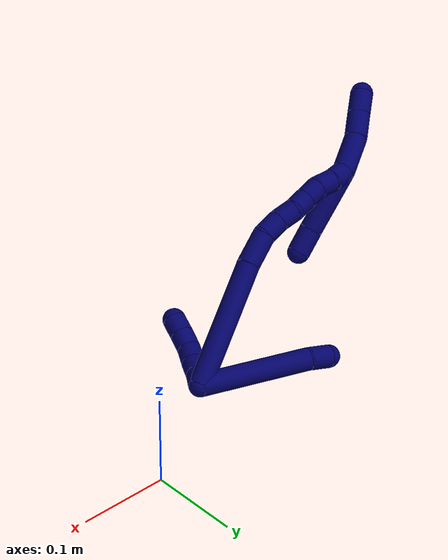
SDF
<sdf version="1.7">
 <world name="default">
  <model name="7">
   <static>0</static>
   <link name="7">
    <collision name="collision-cylinder-e_1_2_8">
     <pose>-0.052737 -0.005002 0.032989 0.150469 -1.00668 -0.082965</pose>
     <geometry><cylinder><radius>0.0125</radius><length>0.124812</length></cylinder></geometry>
     <surface>
      <friction><ode><mu>1.16</mu><mu2>1.16</mu2><slip1>0</slip1><slip2>0</slip2></ode></friction>
      <contact><ode><kp>1e+06</kp><kd>1</kd><max_vel>0</max_vel><min_depth>0.001</min_depth></ode></contact>
     </surface>
    </collision>
    <visual name="visual-cylinder-e_1_2_8">
     <pose>-0.052737 -0.005002 0.032989 0.150469 -1.00668 -0.082965</pose>
     <geometry><cylinder><radius>0.0125</radius><length>0.124812</length></cylinder></geometry>
     <material><ambient>0.003922 0 0.403922 1</ambient></material>
    </visual>
    <collision name="collision-cylinder-e_2_8_6">
     <pose>-0.116341 -0.013103 0.071538 0.508575 -1.04092 -0.295774</pose>
     <geometry><cylinder><radius>0.0125</radius><length>0.025188</length></cylinder></geometry>
     <surface>
      <friction><ode><mu>1.16</mu><mu2>1.16</mu2><slip1>0</slip1><slip2>0</slip2></ode></friction>
      <contact><ode><kp>1e+06</kp><kd>1</kd><max_vel>0</max_vel><min_depth>0.001</min_depth></ode></contact>
     </surface>
    </collision>
    <visual name="visual-cylinder-e_2_8_6">
     <pose>-0.116341 -0.013103 0.071538 0.508575 -1.04092 -0.295774</pose>
     <geometry><cylinder><radius>0.0125</radius><length>0.025188</length></cylinder></geometry>
     <material><ambient>0.003922 0 0.403922 1</ambient></material>
    </visual>
    <collision name="collision-cylinder-e_1_2_9">
     <pose>0.001574 -0.007449 0.006483 0.854608 0.158075 0.0721</pose>
     <geometry><cylinder><radius>0.0125</radius><length>0.02</length></cylinder></geometry>
     <surface>
      <friction><ode><mu>1.16</mu><mu2>1.16</mu2><slip1>0</slip1><slip2>0</slip2></ode></friction>
      <contact><ode><kp>1e+06</kp><kd>1</kd><max_vel>0</max_vel><min_depth>0.001</min_depth></ode></contact>
     </surface>
    </collision>
    <visual name="visual-cylinder-e_1_2_9">
     <pose>0.001574 -0.007449 0.006483 0.854608 0.158075 0.0721</pose>
     <geometry><cylinder><radius>0.0125</radius><length>0.02</length></cylinder></geometry>
     <material><ambient>0.003922 0 0.403922 1</ambient></material>
    </visual>
    <collision name="collision-cylinder-e_2_9_10">
     <pose>0.005944 -0.022044 0.019379 0.839438 0.283304 0.127101</pose>
     <geometry><cylinder><radius>0.0125</radius><length>0.02</length></cylinder></geometry>
     <surface>
      <friction><ode><mu>1.16</mu><mu2>1.16</mu2><slip1>0</slip1><slip2>0</slip2></ode></friction>
      <contact><ode><kp>1e+06</kp><kd>1</kd><max_vel>0</max_vel><min_depth>0.001</min_depth></ode></contact>
     </surface>
    </collision>
    <visual name="visual-cylinder-e_2_9_10">
     <pose>0.005944 -0.022044 0.019379 0.839438 0.283304 0.127101</pose>
     <geometry><cylinder><radius>0.0125</radius><length>0.02</length></cylinder></geometry>
     <material><ambient>0.003922 0 0.403922 1</ambient></material>
    </visual>
    <collision name="collision-cylinder-e_3_10_11">
     <pose>0.011848 -0.035281 0.033088 0.695642 0.31619 0.115475</pose>
     <geometry><cylinder><radius>0.0125</radius><length>0.02</length></cylinder></geometry>
     <surface>
      <friction><ode><mu>1.16</mu><mu2>1.16</mu2><slip1>0</slip1><slip2>0</slip2></ode></friction>
      <contact><ode><kp>1e+06</kp><kd>1</kd><max_vel>0</max_vel><min_depth>0.001</min_depth></ode></contact>
     </surface>
    </collision>
    <visual name="visual-cylinder-e_3_10_11">
     <pose>0.011848 -0.035281 0.033088 0.695642 0.31619 0.115475</pose>
     <geometry><cylinder><radius>0.0125</radius><length>0.02</length></cylinder></geometry>
     <material><ambient>0.003922 0 0.403922 1</ambient></material>
    </visual>
    <collision name="collision-cylinder-e_4_11_12">
     <pose>0.020151 -0.046005 0.047564 0.573 0.546103 0.164633</pose>
     <geometry><cylinder><radius>0.0125</radius><length>0.02</length></cylinder></geometry>
     <surface>
      <friction><ode><mu>1.16</mu><mu2>1.16</mu2><slip1>0</slip1><slip2>0</slip2></ode></friction>
      <contact><ode><kp>1e+06</kp><kd>1</kd><max_vel>0</max_vel><min_depth>0.001</min_depth></ode></contact>
     </surface>
    </collision>
    <visual name="visual-cylinder-e_4_11_12">
     <pose>0.020151 -0.046005 0.047564 0.573 0.546103 0.164633</pose>
     <geometry><cylinder><radius>0.0125</radius><length>0.02</length></cylinder></geometry>
     <material><ambient>0.003922 0 0.403922 1</ambient></material>
    </visual>
    <collision name="collision-cylinder-e_5_12_5">
     <pose>0.030958 -0.055025 0.061763 0.558675 0.595883 0.175712</pose>
     <geometry><cylinder><radius>0.0125</radius><length>0.02</length></cylinder></geometry>
     <surface>
      <friction><ode><mu>1.16</mu><mu2>1.16</mu2><slip1>0</slip1><slip2>0</slip2></ode></friction>
      <contact><ode><kp>1e+06</kp><kd>1</kd><max_vel>0</max_vel><min_depth>0.001</min_depth></ode></contact>
     </surface>
    </collision>
    <visual name="visual-cylinder-e_5_12_5">
     <pose>0.030958 -0.055025 0.061763 0.558675 0.595883 0.175712</pose>
     <geometry><cylinder><radius>0.0125</radius><length>0.02</length></cylinder></geometry>
     <material><ambient>0.003922 0 0.403922 1</ambient></material>
    </visual>
    <collision name="collision-cylinder-e_1_2_13">
     <pose>-0.005343 0.003225 0.068764 -0.046869 -0.077464 0.001817</pose>
     <geometry><cylinder><radius>0.0125</radius><length>0.138092</length></cylinder></geometry>
     <surface>
      <friction><ode><mu>1.16</mu><mu2>1.16</mu2><slip1>0</slip1><slip2>0</slip2></ode></friction>
      <contact><ode><kp>1e+06</kp><kd>1</kd><max_vel>0</max_vel><min_depth>0.001</min_depth></ode></contact>
     </surface>
    </collision>
    <visual name="visual-cylinder-e_1_2_13">
     <pose>-0.005343 0.003225 0.068764 -0.046869 -0.077464 0.001817</pose>
     <geometry><cylinder><radius>0.0125</radius><length>0.138092</length></cylinder></geometry>
     <material><ambient>0.003922 0 0.403922 1</ambient></material>
    </visual>
    <collision name="collision-cylinder-e_2_13_14">
     <pose>-0.01408 0.007046 0.155362 -0.033391 -0.187936 0.003147</pose>
     <geometry><cylinder><radius>0.0125</radius><length>0.03633</length></cylinder></geometry>
     <surface>
      <friction><ode><mu>1.16</mu><mu2>1.16</mu2><slip1>0</slip1><slip2>0</slip2></ode></friction>
      <contact><ode><kp>1e+06</kp><kd>1</kd><max_vel>0</max_vel><min_depth>0.001</min_depth></ode></contact>
     </surface>
    </collision>
    <visual name="visual-cylinder-e_2_13_14">
     <pose>-0.01408 0.007046 0.155362 -0.033391 -0.187936 0.003147</pose>
     <geometry><cylinder><radius>0.0125</radius><length>0.03633</length></cylinder></geometry>
     <material><ambient>0.003922 0 0.403922 1</ambient></material>
    </visual>
    <collision name="collision-cylinder-e_3_14_15">
     <pose>-0.023019 0.006529 0.18354 0.107161 -0.489718 -0.026801</pose>
     <geometry><cylinder><radius>0.0125</radius><length>0.023577</length></cylinder></geometry>
     <surface>
      <friction><ode><mu>1.16</mu><mu2>1.16</mu2><slip1>0</slip1><slip2>0</slip2></ode></friction>
      <contact><ode><kp>1e+06</kp><kd>1</kd><max_vel>0</max_vel><min_depth>0.001</min_depth></ode></contact>
     </surface>
    </collision>
    <visual name="visual-cylinder-e_3_14_15">
     <pose>-0.023019 0.006529 0.18354 0.107161 -0.489718 -0.026801</pose>
     <geometry><cylinder><radius>0.0125</radius><length>0.023577</length></cylinder></geometry>
     <material><ambient>0.003922 0 0.403922 1</ambient></material>
    </visual>
    <collision name="collision-cylinder-e_4_15_16">
     <pose>-0.034999 0.005332 0.202388 0.010012 -0.647713 -0.003361</pose>
     <geometry><cylinder><radius>0.0125</radius><length>0.021331</length></cylinder></geometry>
     <surface>
      <friction><ode><mu>1.16</mu><mu2>1.16</mu2><slip1>0</slip1><slip2>0</slip2></ode></friction>
      <contact><ode><kp>1e+06</kp><kd>1</kd><max_vel>0</max_vel><min_depth>0.001</min_depth></ode></contact>
     </surface>
    </collision>
    <visual name="visual-cylinder-e_4_15_16">
     <pose>-0.034999 0.005332 0.202388 0.010012 -0.647713 -0.003361</pose>
     <geometry><cylinder><radius>0.0125</radius><length>0.021331</length></cylinder></geometry>
     <material><ambient>0.003922 0 0.403922 1</ambient></material>
    </visual>
    <collision name="collision-cylinder-e_5_16_17">
     <pose>-0.046123 0.002111 0.219197 0.361019 -0.486018 -0.090423</pose>
     <geometry><cylinder><radius>0.0125</radius><length>0.020075</length></cylinder></geometry>
     <surface>
      <friction><ode><mu>1.16</mu><mu2>1.16</mu2><slip1>0</slip1><slip2>0</slip2></ode></friction>
      <contact><ode><kp>1e+06</kp><kd>1</kd><max_vel>0</max_vel><min_depth>0.001</min_depth></ode></contact>
     </surface>
    </collision>
    <visual name="visual-cylinder-e_5_16_17">
     <pose>-0.046123 0.002111 0.219197 0.361019 -0.486018 -0.090423</pose>
     <geometry><cylinder><radius>0.0125</radius><length>0.020075</length></cylinder></geometry>
     <material><ambient>0.003922 0 0.403922 1</ambient></material>
    </visual>
    <collision name="collision-cylinder-e_6_17_18">
     <pose>-0.055713 -0.002344 0.236329 0.148499 -0.502099 -0.03815</pose>
     <geometry><cylinder><radius>0.0125</radius><length>0.020369</length></cylinder></geometry>
     <surface>
      <friction><ode><mu>1.16</mu><mu2>1.16</mu2><slip1>0</slip1><slip2>0</slip2></ode></friction>
      <contact><ode><kp>1e+06</kp><kd>1</kd><max_vel>0</max_vel><min_depth>0.001</min_depth></ode></contact>
     </surface>
    </collision>
    <visual name="visual-cylinder-e_6_17_18">
     <pose>-0.055713 -0.002344 0.236329 0.148499 -0.502099 -0.03815</pose>
     <geometry><cylinder><radius>0.0125</radius><length>0.020369</length></cylinder></geometry>
     <material><ambient>0.003922 0 0.403922 1</ambient></material>
    </visual>
    <collision name="collision-cylinder-e_7_18_19">
     <pose>-0.067681 -0.005523 0.252054 0.263133 -0.780105 -0.108699</pose>
     <geometry><cylinder><radius>0.0125</radius><length>0.020091</length></cylinder></geometry>
     <surface>
      <friction><ode><mu>1.16</mu><mu2>1.16</mu2><slip1>0</slip1><slip2>0</slip2></ode></friction>
      <contact><ode><kp>1e+06</kp><kd>1</kd><max_vel>0</max_vel><min_depth>0.001</min_depth></ode></contact>
     </surface>
    </collision>
    <visual name="visual-cylinder-e_7_18_19">
     <pose>-0.067681 -0.005523 0.252054 0.263133 -0.780105 -0.108699</pose>
     <geometry><cylinder><radius>0.0125</radius><length>0.020091</length></cylinder></geometry>
     <material><ambient>0.003922 0 0.403922 1</ambient></material>
    </visual>
    <collision name="collision-cylinder-e_8_19_1">
     <pose>-0.080162 -0.010927 0.266658 0.4312 -0.567991 -0.127674</pose>
     <geometry><cylinder><radius>0.0125</radius><length>0.020134</length></cylinder></geometry>
     <surface>
      <friction><ode><mu>1.16</mu><mu2>1.16</mu2><slip1>0</slip1><slip2>0</slip2></ode></friction>
      <contact><ode><kp>1e+06</kp><kd>1</kd><max_vel>0</max_vel><min_depth>0.001</min_depth></ode></contact>
     </surface>
    </collision>
    <visual name="visual-cylinder-e_8_19_1">
     <pose>-0.080162 -0.010927 0.266658 0.4312 -0.567991 -0.127674</pose>
     <geometry><cylinder><radius>0.0125</radius><length>0.020134</length></cylinder></geometry>
     <material><ambient>0.003922 0 0.403922 1</ambient></material>
    </visual>
    <collision name="collision-cylinder-e_1_1_20">
     <pose>-0.080462 -0.028198 0.241751 2.7433 0.143568 0.684541</pose>
     <geometry><cylinder><radius>0.0125</radius><length>0.071508</length></cylinder></geometry>
     <surface>
      <friction><ode><mu>1.16</mu><mu2>1.16</mu2><slip1>0</slip1><slip2>0</slip2></ode></friction>
      <contact><ode><kp>1e+06</kp><kd>1</kd><max_vel>0</max_vel><min_depth>0.001</min_depth></ode></contact>
     </surface>
    </collision>
    <visual name="visual-cylinder-e_1_1_20">
     <pose>-0.080462 -0.028198 0.241751 2.7433 0.143568 0.684541</pose>
     <geometry><cylinder><radius>0.0125</radius><length>0.071508</length></cylinder></geometry>
     <material><ambient>0.003922 0 0.403922 1</ambient></material>
    </visual>
    <collision name="collision-cylinder-e_2_20_4">
     <pose>-0.073105 -0.045549 0.195542 2.88093 0.158002 1.08668</pose>
     <geometry><cylinder><radius>0.0125</radius><length>0.028492</length></cylinder></geometry>
     <surface>
      <friction><ode><mu>1.16</mu><mu2>1.16</mu2><slip1>0</slip1><slip2>0</slip2></ode></friction>
      <contact><ode><kp>1e+06</kp><kd>1</kd><max_vel>0</max_vel><min_depth>0.001</min_depth></ode></contact>
     </surface>
    </collision>
    <visual name="visual-cylinder-e_2_20_4">
     <pose>-0.073105 -0.045549 0.195542 2.88093 0.158002 1.08668</pose>
     <geometry><cylinder><radius>0.0125</radius><length>0.028492</length></cylinder></geometry>
     <material><ambient>0.003922 0 0.403922 1</ambient></material>
    </visual>
    <collision name="collision-cylinder-e_1_1_21">
     <pose>-0.087933 -0.01925 0.29602 0.217097 -0.105837 -0.011544</pose>
     <geometry><cylinder><radius>0.0125</radius><length>0.044594</length></cylinder></geometry>
     <surface>
      <friction><ode><mu>1.16</mu><mu2>1.16</mu2><slip1>0</slip1><slip2>0</slip2></ode></friction>
      <contact><ode><kp>1e+06</kp><kd>1</kd><max_vel>0</max_vel><min_depth>0.001</min_depth></ode></contact>
     </surface>
    </collision>
    <visual name="visual-cylinder-e_1_1_21">
     <pose>-0.087933 -0.01925 0.29602 0.217097 -0.105837 -0.011544</pose>
     <geometry><cylinder><radius>0.0125</radius><length>0.044594</length></cylinder></geometry>
     <material><ambient>0.003922 0 0.403922 1</ambient></material>
    </visual>
    <collision name="collision-cylinder-e_2_21_22">
     <pose>-0.088931 -0.027262 0.331906 0.22359 0.092729 0.010417</pose>
     <geometry><cylinder><radius>0.0125</radius><length>0.029321</length></cylinder></geometry>
     <surface>
      <friction><ode><mu>1.16</mu><mu2>1.16</mu2><slip1>0</slip1><slip2>0</slip2></ode></friction>
      <contact><ode><kp>1e+06</kp><kd>1</kd><max_vel>0</max_vel><min_depth>0.001</min_depth></ode></contact>
     </surface>
    </collision>
    <visual name="visual-cylinder-e_2_21_22">
     <pose>-0.088931 -0.027262 0.331906 0.22359 0.092729 0.010417</pose>
     <geometry><cylinder><radius>0.0125</radius><length>0.029321</length></cylinder></geometry>
     <material><ambient>0.003922 0 0.403922 1</ambient></material>
    </visual>
    <collision name="collision-cylinder-e_3_22_3">
     <pose>-0.086512 -0.033418 0.358807 0.226469 0.081459 0.009269</pose>
     <geometry><cylinder><radius>0.0125</radius><length>0.026085</length></cylinder></geometry>
     <surface>
      <friction><ode><mu>1.16</mu><mu2>1.16</mu2><slip1>0</slip1><slip2>0</slip2></ode></friction>
      <contact><ode><kp>1e+06</kp><kd>1</kd><max_vel>0</max_vel><min_depth>0.001</min_depth></ode></contact>
     </surface>
    </collision>
    <visual name="visual-cylinder-e_3_22_3">
     <pose>-0.086512 -0.033418 0.358807 0.226469 0.081459 0.009269</pose>
     <geometry><cylinder><radius>0.0125</radius><length>0.026085</length></cylinder></geometry>
     <material><ambient>0.003922 0 0.403922 1</ambient></material>
    </visual>
    <collision name="collision-sphere-3">
     <pose>-0.085451 -0.036337 0.371474 0 -0 0</pose>
     <geometry><sphere><radius>0.0125</radius></sphere></geometry>
     <surface>
      <friction><ode><mu>1.16</mu><mu2>1.16</mu2><slip1>0</slip1><slip2>0</slip2></ode></friction>
      <contact><ode><kp>1e+06</kp><kd>1</kd><max_vel>0</max_vel><min_depth>0.001</min_depth></ode></contact>
     </surface>
    </collision>
    <visual name="visual-sphere-3">
     <pose>-0.085451 -0.036337 0.371474 0 -0 0</pose>
     <geometry><sphere><radius>0.0125</radius></sphere></geometry>
     <material><ambient>0.003922 0 0.403922 1</ambient></material>
    </visual>
    <collision name="collision-sphere-22">
     <pose>-0.087573 -0.030499 0.34614 0 -0 0</pose>
     <geometry><sphere><radius>0.0125</radius></sphere></geometry>
     <surface>
      <friction><ode><mu>1.16</mu><mu2>1.16</mu2><slip1>0</slip1><slip2>0</slip2></ode></friction>
      <contact><ode><kp>1e+06</kp><kd>1</kd><max_vel>0</max_vel><min_depth>0.001</min_depth></ode></contact>
     </surface>
    </collision>
    <visual name="visual-sphere-22">
     <pose>-0.087573 -0.030499 0.34614 0 -0 0</pose>
     <geometry><sphere><radius>0.0125</radius></sphere></geometry>
     <material><ambient>0.003922 0 0.403922 1</ambient></material>
    </visual>
    <collision name="collision-sphere-21">
     <pose>-0.090288 -0.024026 0.317671 0 -0 0</pose>
     <geometry><sphere><radius>0.0125</radius></sphere></geometry>
     <surface>
      <friction><ode><mu>1.16</mu><mu2>1.16</mu2><slip1>0</slip1><slip2>0</slip2></ode></friction>
      <contact><ode><kp>1e+06</kp><kd>1</kd><max_vel>0</max_vel><min_depth>0.001</min_depth></ode></contact>
     </surface>
    </collision>
    <visual name="visual-sphere-21">
     <pose>-0.090288 -0.024026 0.317671 0 -0 0</pose>
     <geometry><sphere><radius>0.0125</radius></sphere></geometry>
     <material><ambient>0.003922 0 0.403922 1</ambient></material>
    </visual>
    <collision name="collision-sphere-4">
     <pose>-0.070863 -0.049174 0.181949 0 -0 0</pose>
     <geometry><sphere><radius>0.0125</radius></sphere></geometry>
     <surface>
      <friction><ode><mu>1.16</mu><mu2>1.16</mu2><slip1>0</slip1><slip2>0</slip2></ode></friction>
      <contact><ode><kp>1e+06</kp><kd>1</kd><max_vel>0</max_vel><min_depth>0.001</min_depth></ode></contact>
     </surface>
    </collision>
    <visual name="visual-sphere-4">
     <pose>-0.070863 -0.049174 0.181949 0 -0 0</pose>
     <geometry><sphere><radius>0.0125</radius></sphere></geometry>
     <material><ambient>0.003922 0 0.403922 1</ambient></material>
    </visual>
    <collision name="collision-sphere-20">
     <pose>-0.075346 -0.041923 0.209135 0 -0 0</pose>
     <geometry><sphere><radius>0.0125</radius></sphere></geometry>
     <surface>
      <friction><ode><mu>1.16</mu><mu2>1.16</mu2><slip1>0</slip1><slip2>0</slip2></ode></friction>
      <contact><ode><kp>1e+06</kp><kd>1</kd><max_vel>0</max_vel><min_depth>0.001</min_depth></ode></contact>
     </surface>
    </collision>
    <visual name="visual-sphere-20">
     <pose>-0.075346 -0.041923 0.209135 0 -0 0</pose>
     <geometry><sphere><radius>0.0125</radius></sphere></geometry>
     <material><ambient>0.003922 0 0.403922 1</ambient></material>
    </visual>
    <collision name="collision-sphere-11">
     <pose>0.014958 -0.041372 0.040383 0 -0 0</pose>
     <geometry><sphere><radius>0.0125</radius></sphere></geometry>
     <surface>
      <friction><ode><mu>1.16</mu><mu2>1.16</mu2><slip1>0</slip1><slip2>0</slip2></ode></friction>
      <contact><ode><kp>1e+06</kp><kd>1</kd><max_vel>0</max_vel><min_depth>0.001</min_depth></ode></contact>
     </surface>
    </collision>
    <visual name="visual-sphere-11">
     <pose>0.014958 -0.041372 0.040383 0 -0 0</pose>
     <geometry><sphere><radius>0.0125</radius></sphere></geometry>
     <material><ambient>0.003922 0 0.403922 1</ambient></material>
    </visual>
    <collision name="collision-sphere-10">
     <pose>0.008739 -0.02919 0.025792 0 -0 0</pose>
     <geometry><sphere><radius>0.0125</radius></sphere></geometry>
     <surface>
      <friction><ode><mu>1.16</mu><mu2>1.16</mu2><slip1>0</slip1><slip2>0</slip2></ode></friction>
      <contact><ode><kp>1e+06</kp><kd>1</kd><max_vel>0</max_vel><min_depth>0.001</min_depth></ode></contact>
     </surface>
    </collision>
    <visual name="visual-sphere-10">
     <pose>0.008739 -0.02919 0.025792 0 -0 0</pose>
     <geometry><sphere><radius>0.0125</radius></sphere></geometry>
     <material><ambient>0.003922 0 0.403922 1</ambient></material>
    </visual>
    <collision name="collision-sphere-6">
     <pose>-0.127208 -0.016202 0.077098 0 -0 0</pose>
     <geometry><sphere><radius>0.0125</radius></sphere></geometry>
     <surface>
      <friction><ode><mu>1.16</mu><mu2>1.16</mu2><slip1>0</slip1><slip2>0</slip2></ode></friction>
      <contact><ode><kp>1e+06</kp><kd>1</kd><max_vel>0</max_vel><min_depth>0.001</min_depth></ode></contact>
     </surface>
    </collision>
    <visual name="visual-sphere-6">
     <pose>-0.127208 -0.016202 0.077098 0 -0 0</pose>
     <geometry><sphere><radius>0.0125</radius></sphere></geometry>
     <material><ambient>0.003922 0 0.403922 1</ambient></material>
    </visual>
    <collision name="collision-sphere-9">
     <pose>0.003148 -0.014898 0.012967 0 -0 0</pose>
     <geometry><sphere><radius>0.0125</radius></sphere></geometry>
     <surface>
      <friction><ode><mu>1.16</mu><mu2>1.16</mu2><slip1>0</slip1><slip2>0</slip2></ode></friction>
      <contact><ode><kp>1e+06</kp><kd>1</kd><max_vel>0</max_vel><min_depth>0.001</min_depth></ode></contact>
     </surface>
    </collision>
    <visual name="visual-sphere-9">
     <pose>0.003148 -0.014898 0.012967 0 -0 0</pose>
     <geometry><sphere><radius>0.0125</radius></sphere></geometry>
     <material><ambient>0.003922 0 0.403922 1</ambient></material>
    </visual>
    <collision name="collision-sphere-2">
     <geometry><sphere><radius>0.0125</radius></sphere></geometry>
     <surface>
      <friction><ode><mu>1.16</mu><mu2>1.16</mu2><slip1>0</slip1><slip2>0</slip2></ode></friction>
      <contact><ode><kp>1e+06</kp><kd>1</kd><max_vel>0</max_vel><min_depth>0.001</min_depth></ode></contact>
     </surface>
    </collision>
    <visual name="visual-sphere-2">
     <geometry><sphere><radius>0.0125</radius></sphere></geometry>
     <material><ambient>0.003922 0 0.403922 1</ambient></material>
    </visual>
    <collision name="collision-sphere-19">
     <pose>-0.074746 -0.00738 0.258949 0 -0 0</pose>
     <geometry><sphere><radius>0.0125</radius></sphere></geometry>
     <surface>
      <friction><ode><mu>1.16</mu><mu2>1.16</mu2><slip1>0</slip1><slip2>0</slip2></ode></friction>
      <contact><ode><kp>1e+06</kp><kd>1</kd><max_vel>0</max_vel><min_depth>0.001</min_depth></ode></contact>
     </surface>
    </collision>
    <visual name="visual-sphere-19">
     <pose>-0.074746 -0.00738 0.258949 0 -0 0</pose>
     <geometry><sphere><radius>0.0125</radius></sphere></geometry>
     <material><ambient>0.003922 0 0.403922 1</ambient></material>
    </visual>
    <collision name="collision-sphere-8">
     <pose>-0.105474 -0.010003 0.065979 0 -0 0</pose>
     <geometry><sphere><radius>0.0125</radius></sphere></geometry>
     <surface>
      <friction><ode><mu>1.16</mu><mu2>1.16</mu2><slip1>0</slip1><slip2>0</slip2></ode></friction>
      <contact><ode><kp>1e+06</kp><kd>1</kd><max_vel>0</max_vel><min_depth>0.001</min_depth></ode></contact>
     </surface>
    </collision>
    <visual name="visual-sphere-8">
     <pose>-0.105474 -0.010003 0.065979 0 -0 0</pose>
     <geometry><sphere><radius>0.0125</radius></sphere></geometry>
     <material><ambient>0.003922 0 0.403922 1</ambient></material>
    </visual>
    <collision name="collision-sphere-12">
     <pose>0.025345 -0.050638 0.054745 0 -0 0</pose>
     <geometry><sphere><radius>0.0125</radius></sphere></geometry>
     <surface>
      <friction><ode><mu>1.16</mu><mu2>1.16</mu2><slip1>0</slip1><slip2>0</slip2></ode></friction>
      <contact><ode><kp>1e+06</kp><kd>1</kd><max_vel>0</max_vel><min_depth>0.001</min_depth></ode></contact>
     </surface>
    </collision>
    <visual name="visual-sphere-12">
     <pose>0.025345 -0.050638 0.054745 0 -0 0</pose>
     <geometry><sphere><radius>0.0125</radius></sphere></geometry>
     <material><ambient>0.003922 0 0.403922 1</ambient></material>
    </visual>
    <collision name="collision-sphere-5">
     <pose>0.03657 -0.059413 0.068781 0 -0 0</pose>
     <geometry><sphere><radius>0.0125</radius></sphere></geometry>
     <surface>
      <friction><ode><mu>1.16</mu><mu2>1.16</mu2><slip1>0</slip1><slip2>0</slip2></ode></friction>
      <contact><ode><kp>1e+06</kp><kd>1</kd><max_vel>0</max_vel><min_depth>0.001</min_depth></ode></contact>
     </surface>
    </collision>
    <visual name="visual-sphere-5">
     <pose>0.03657 -0.059413 0.068781 0 -0 0</pose>
     <geometry><sphere><radius>0.0125</radius></sphere></geometry>
     <material><ambient>0.003922 0 0.403922 1</ambient></material>
    </visual>
    <collision name="collision-sphere-13">
     <pose>-0.010686 0.00645 0.137527 0 -0 0</pose>
     <geometry><sphere><radius>0.0125</radius></sphere></geometry>
     <surface>
      <friction><ode><mu>1.16</mu><mu2>1.16</mu2><slip1>0</slip1><slip2>0</slip2></ode></friction>
      <contact><ode><kp>1e+06</kp><kd>1</kd><max_vel>0</max_vel><min_depth>0.001</min_depth></ode></contact>
     </surface>
    </collision>
    <visual name="visual-sphere-13">
     <pose>-0.010686 0.00645 0.137527 0 -0 0</pose>
     <geometry><sphere><radius>0.0125</radius></sphere></geometry>
     <material><ambient>0.003922 0 0.403922 1</ambient></material>
    </visual>
    <collision name="collision-sphere-14">
     <pose>-0.017474 0.007642 0.173197 0 -0 0</pose>
     <geometry><sphere><radius>0.0125</radius></sphere></geometry>
     <surface>
      <friction><ode><mu>1.16</mu><mu2>1.16</mu2><slip1>0</slip1><slip2>0</slip2></ode></friction>
      <contact><ode><kp>1e+06</kp><kd>1</kd><max_vel>0</max_vel><min_depth>0.001</min_depth></ode></contact>
     </surface>
    </collision>
    <visual name="visual-sphere-14">
     <pose>-0.017474 0.007642 0.173197 0 -0 0</pose>
     <geometry><sphere><radius>0.0125</radius></sphere></geometry>
     <material><ambient>0.003922 0 0.403922 1</ambient></material>
    </visual>
    <collision name="collision-sphere-15">
     <pose>-0.028564 0.005417 0.193883 0 -0 0</pose>
     <geometry><sphere><radius>0.0125</radius></sphere></geometry>
     <surface>
      <friction><ode><mu>1.16</mu><mu2>1.16</mu2><slip1>0</slip1><slip2>0</slip2></ode></friction>
      <contact><ode><kp>1e+06</kp><kd>1</kd><max_vel>0</max_vel><min_depth>0.001</min_depth></ode></contact>
     </surface>
    </collision>
    <visual name="visual-sphere-15">
     <pose>-0.028564 0.005417 0.193883 0 -0 0</pose>
     <geometry><sphere><radius>0.0125</radius></sphere></geometry>
     <material><ambient>0.003922 0 0.403922 1</ambient></material>
    </visual>
    <collision name="collision-sphere-16">
     <pose>-0.041435 0.005246 0.210894 0 -0 0</pose>
     <geometry><sphere><radius>0.0125</radius></sphere></geometry>
     <surface>
      <friction><ode><mu>1.16</mu><mu2>1.16</mu2><slip1>0</slip1><slip2>0</slip2></ode></friction>
      <contact><ode><kp>1e+06</kp><kd>1</kd><max_vel>0</max_vel><min_depth>0.001</min_depth></ode></contact>
     </surface>
    </collision>
    <visual name="visual-sphere-16">
     <pose>-0.041435 0.005246 0.210894 0 -0 0</pose>
     <geometry><sphere><radius>0.0125</radius></sphere></geometry>
     <material><ambient>0.003922 0 0.403922 1</ambient></material>
    </visual>
    <collision name="collision-sphere-17">
     <pose>-0.050812 -0.001024 0.2275 0 -0 0</pose>
     <geometry><sphere><radius>0.0125</radius></sphere></geometry>
     <surface>
      <friction><ode><mu>1.16</mu><mu2>1.16</mu2><slip1>0</slip1><slip2>0</slip2></ode></friction>
      <contact><ode><kp>1e+06</kp><kd>1</kd><max_vel>0</max_vel><min_depth>0.001</min_depth></ode></contact>
     </surface>
    </collision>
    <visual name="visual-sphere-17">
     <pose>-0.050812 -0.001024 0.2275 0 -0 0</pose>
     <geometry><sphere><radius>0.0125</radius></sphere></geometry>
     <material><ambient>0.003922 0 0.403922 1</ambient></material>
    </visual>
    <collision name="collision-sphere-18">
     <pose>-0.060615 -0.003665 0.245158 0 -0 0</pose>
     <geometry><sphere><radius>0.0125</radius></sphere></geometry>
     <surface>
      <friction><ode><mu>1.16</mu><mu2>1.16</mu2><slip1>0</slip1><slip2>0</slip2></ode></friction>
      <contact><ode><kp>1e+06</kp><kd>1</kd><max_vel>0</max_vel><min_depth>0.001</min_depth></ode></contact>
     </surface>
    </collision>
    <visual name="visual-sphere-18">
     <pose>-0.060615 -0.003665 0.245158 0 -0 0</pose>
     <geometry><sphere><radius>0.0125</radius></sphere></geometry>
     <material><ambient>0.003922 0 0.403922 1</ambient></material>
    </visual>
    <collision name="collision-sphere-1">
     <pose>-0.085577 -0.014474 0.274368 0 -0 0</pose>
     <geometry><sphere><radius>0.0125</radius></sphere></geometry>
     <surface>
      <friction><ode><mu>1.16</mu><mu2>1.16</mu2><slip1>0</slip1><slip2>0</slip2></ode></friction>
      <contact><ode><kp>1e+06</kp><kd>1</kd><max_vel>0</max_vel><min_depth>0.001</min_depth></ode></contact>
     </surface>
    </collision>
    <visual name="visual-sphere-1">
     <pose>-0.085577 -0.014474 0.274368 0 -0 0</pose>
     <geometry><sphere><radius>0.0125</radius></sphere></geometry>
     <material><ambient>0.003922 0 0.403922 1</ambient></material>
    </visual>
    <inertial>
     <pose>-0.043064 -0.012642 0.143823 0 -0 0</pose>
     <mass>0.75</mass>
     <inertia>
      <ixx>0.00038</ixx>
      <ixy>0</ixy>
      <ixz>0</ixz>
      <iyy>0.000409</iyy>
      <iyz>0</iyz>
      <izz>0.000218</izz>
     </inertia>
    </inertial>
   </link>
   <pose>-0.098067 -0.050442 0.042857 0.788435 -0.379522 -0.768674</pose>
  </model>
 </world>
</sdf>
